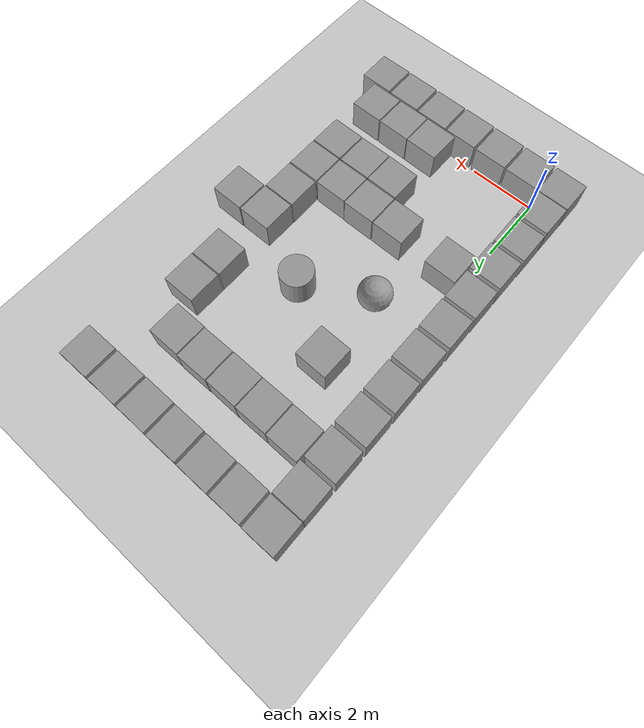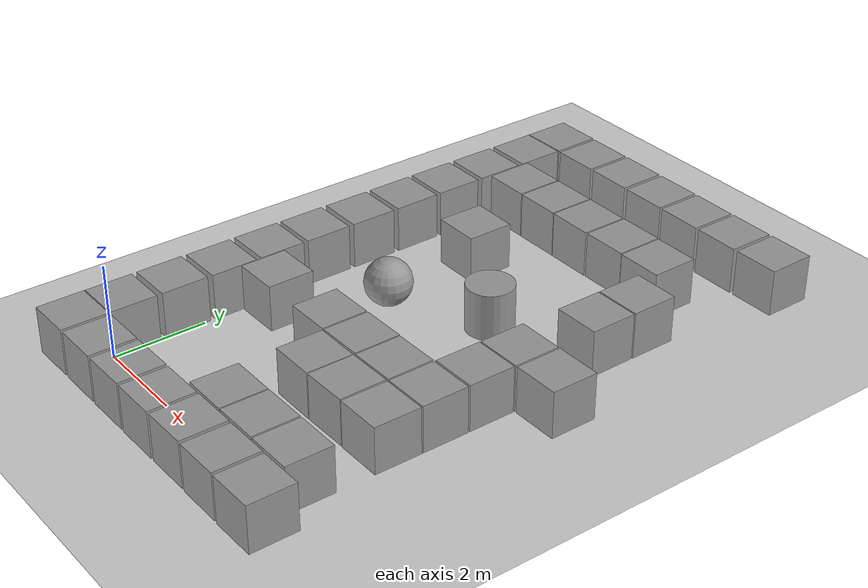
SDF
<sdf version="1.6">
 <world name="narrow_test_v4">
  <include><uri>model://ground_plane</uri></include>
  <include><uri>model://sun</uri></include>
  <model name="unit_box_0">
   <pose>-0.4980 -0.5042 0.5 0 0 0.00272</pose>
   <link name="link">
    <inertial>
     <mass>1</mass>
     <inertia>
      <ixx>0.166667</ixx>
      <ixy>0</ixy>
      <ixz>0</ixz>
      <iyy>0.166667</iyy>
      <iyz>0</iyz>
      <izz>0.166667</izz>
     </inertia>
    </inertial>
    <collision name="collision"><geometry><box><size>1 1 1</size></box></geometry></collision>
    <visual name="visual">
     <geometry><box><size>1 1 1</size></box></geometry>
     <material>
      <script><uri>file://media/materials/scripts/gazebo.material</uri><name>Gazebo/Grey</name></script>
     </material>
    </visual>
   </link>
  </model>
  <model name="unit_box_1">
   <pose>0.5734 -0.5018 0.5 0 0 0.00044</pose>
   <link name="link">
    <inertial>
     <mass>1</mass>
     <inertia>
      <ixx>0.166667</ixx>
      <ixy>0</ixy>
      <ixz>0</ixz>
      <iyy>0.166667</iyy>
      <iyz>0</iyz>
      <izz>0.166667</izz>
     </inertia>
    </inertial>
    <collision name="collision"><geometry><box><size>1 1 1</size></box></geometry></collision>
    <visual name="visual">
     <geometry><box><size>1 1 1</size></box></geometry>
     <material>
      <script><uri>file://media/materials/scripts/gazebo.material</uri><name>Gazebo/Grey</name></script>
     </material>
    </visual>
   </link>
  </model>
  <model name="unit_box_2">
   <pose>1.6460 -0.5023 0.5 0 0 0.00790</pose>
   <link name="link">
    <inertial>
     <mass>1</mass>
     <inertia>
      <ixx>0.166667</ixx>
      <ixy>0</ixy>
      <ixz>0</ixz>
      <iyy>0.166667</iyy>
      <iyz>0</iyz>
      <izz>0.166667</izz>
     </inertia>
    </inertial>
    <collision name="collision"><geometry><box><size>1 1 1</size></box></geometry></collision>
    <visual name="visual">
     <geometry><box><size>1 1 1</size></box></geometry>
     <material>
      <script><uri>file://media/materials/scripts/gazebo.material</uri><name>Gazebo/Grey</name></script>
     </material>
    </visual>
   </link>
  </model>
  <model name="unit_box_3">
   <pose>2.7196 -0.5023 0.5 0 0 0.00452</pose>
   <link name="link">
    <inertial>
     <mass>1</mass>
     <inertia>
      <ixx>0.166667</ixx>
      <ixy>0</ixy>
      <ixz>0</ixz>
      <iyy>0.166667</iyy>
      <iyz>0</iyz>
      <izz>0.166667</izz>
     </inertia>
    </inertial>
    <collision name="collision"><geometry><box><size>1 1 1</size></box></geometry></collision>
    <visual name="visual">
     <geometry><box><size>1 1 1</size></box></geometry>
     <material>
      <script><uri>file://media/materials/scripts/gazebo.material</uri><name>Gazebo/Grey</name></script>
     </material>
    </visual>
   </link>
  </model>
  <model name="unit_box_4">
   <pose>3.7847 -0.4944 0.5 0 0 0.00230</pose>
   <link name="link">
    <inertial>
     <mass>1</mass>
     <inertia>
      <ixx>0.166667</ixx>
      <ixy>0</ixy>
      <ixz>0</ixz>
      <iyy>0.166667</iyy>
      <iyz>0</iyz>
      <izz>0.166667</izz>
     </inertia>
    </inertial>
    <collision name="collision"><geometry><box><size>1 1 1</size></box></geometry></collision>
    <visual name="visual">
     <geometry><box><size>1 1 1</size></box></geometry>
     <material>
      <script><uri>file://media/materials/scripts/gazebo.material</uri><name>Gazebo/Grey</name></script>
     </material>
    </visual>
   </link>
  </model>
  <model name="unit_box_5">
   <pose>4.8581 -0.4999 0.5 0 0 0.00623</pose>
   <link name="link">
    <inertial>
     <mass>1</mass>
     <inertia>
      <ixx>0.166667</ixx>
      <ixy>0</ixy>
      <ixz>0</ixz>
      <iyy>0.166667</iyy>
      <iyz>0</iyz>
      <izz>0.166667</izz>
     </inertia>
    </inertial>
    <collision name="collision"><geometry><box><size>1 1 1</size></box></geometry></collision>
    <visual name="visual">
     <geometry><box><size>1 1 1</size></box></geometry>
     <material>
      <script><uri>file://media/materials/scripts/gazebo.material</uri><name>Gazebo/Grey</name></script>
     </material>
    </visual>
   </link>
  </model>
  <model name="unit_box_6">
   <pose>5.9253 -0.5030 0.5 0 0 0.01002</pose>
   <link name="link">
    <inertial>
     <mass>1</mass>
     <inertia>
      <ixx>0.166667</ixx>
      <ixy>0</ixy>
      <ixz>0</ixz>
      <iyy>0.166667</iyy>
      <iyz>0</iyz>
      <izz>0.166667</izz>
     </inertia>
    </inertial>
    <collision name="collision"><geometry><box><size>1 1 1</size></box></geometry></collision>
    <visual name="visual">
     <geometry><box><size>1 1 1</size></box></geometry>
     <material>
      <script><uri>file://media/materials/scripts/gazebo.material</uri><name>Gazebo/Grey</name></script>
     </material>
    </visual>
   </link>
  </model>
  <model name="unit_box_15">
   <pose>-0.4976 11.5058 0.5 0 0 0.01037</pose>
   <link name="link">
    <inertial>
     <mass>1</mass>
     <inertia>
      <ixx>0.166667</ixx>
      <ixy>0</ixy>
      <ixz>0</ixz>
      <iyy>0.166667</iyy>
      <iyz>0</iyz>
      <izz>0.166667</izz>
     </inertia>
    </inertial>
    <collision name="collision"><geometry><box><size>1 1 1</size></box></geometry></collision>
    <visual name="visual">
     <geometry><box><size>1 1 1</size></box></geometry>
     <material>
      <script><uri>file://media/materials/scripts/gazebo.material</uri><name>Gazebo/Grey</name></script>
     </material>
    </visual>
   </link>
  </model>
  <model name="unit_box_16">
   <pose>0.5728 11.4978 0.5 0 0 0.00180</pose>
   <link name="link">
    <inertial>
     <mass>1</mass>
     <inertia>
      <ixx>0.166667</ixx>
      <ixy>0</ixy>
      <ixz>0</ixz>
      <iyy>0.166667</iyy>
      <iyz>0</iyz>
      <izz>0.166667</izz>
     </inertia>
    </inertial>
    <collision name="collision"><geometry><box><size>1 1 1</size></box></geometry></collision>
    <visual name="visual">
     <geometry><box><size>1 1 1</size></box></geometry>
     <material>
      <script><uri>file://media/materials/scripts/gazebo.material</uri><name>Gazebo/Grey</name></script>
     </material>
    </visual>
   </link>
  </model>
  <model name="unit_box_17">
   <pose>1.6393 11.5044 0.5 0 0 -0.00003</pose>
   <link name="link">
    <inertial>
     <mass>1</mass>
     <inertia>
      <ixx>0.166667</ixx>
      <ixy>0</ixy>
      <ixz>0</ixz>
      <iyy>0.166667</iyy>
      <iyz>0</iyz>
      <izz>0.166667</izz>
     </inertia>
    </inertial>
    <collision name="collision"><geometry><box><size>1 1 1</size></box></geometry></collision>
    <visual name="visual">
     <geometry><box><size>1 1 1</size></box></geometry>
     <material>
      <script><uri>file://media/materials/scripts/gazebo.material</uri><name>Gazebo/Grey</name></script>
     </material>
    </visual>
   </link>
  </model>
  <model name="unit_box_18">
   <pose>2.7196 11.5036 0.5 0 0 0.00669</pose>
   <link name="link">
    <inertial>
     <mass>1</mass>
     <inertia>
      <ixx>0.166667</ixx>
      <ixy>0</ixy>
      <ixz>0</ixz>
      <iyy>0.166667</iyy>
      <iyz>0</iyz>
      <izz>0.166667</izz>
     </inertia>
    </inertial>
    <collision name="collision"><geometry><box><size>1 1 1</size></box></geometry></collision>
    <visual name="visual">
     <geometry><box><size>1 1 1</size></box></geometry>
     <material>
      <script><uri>file://media/materials/scripts/gazebo.material</uri><name>Gazebo/Grey</name></script>
     </material>
    </visual>
   </link>
  </model>
  <model name="unit_box_19">
   <pose>3.7861 11.5000 0.5 0 0 -0.00668</pose>
   <link name="link">
    <inertial>
     <mass>1</mass>
     <inertia>
      <ixx>0.166667</ixx>
      <ixy>0</ixy>
      <ixz>0</ixz>
      <iyy>0.166667</iyy>
      <iyz>0</iyz>
      <izz>0.166667</izz>
     </inertia>
    </inertial>
    <collision name="collision"><geometry><box><size>1 1 1</size></box></geometry></collision>
    <visual name="visual">
     <geometry><box><size>1 1 1</size></box></geometry>
     <material>
      <script><uri>file://media/materials/scripts/gazebo.material</uri><name>Gazebo/Grey</name></script>
     </material>
    </visual>
   </link>
  </model>
  <model name="unit_box_20">
   <pose>4.8523 11.4990 0.5 0 0 -0.00544</pose>
   <link name="link">
    <inertial>
     <mass>1</mass>
     <inertia>
      <ixx>0.166667</ixx>
      <ixy>0</ixy>
      <ixz>0</ixz>
      <iyy>0.166667</iyy>
      <iyz>0</iyz>
      <izz>0.166667</izz>
     </inertia>
    </inertial>
    <collision name="collision"><geometry><box><size>1 1 1</size></box></geometry></collision>
    <visual name="visual">
     <geometry><box><size>1 1 1</size></box></geometry>
     <material>
      <script><uri>file://media/materials/scripts/gazebo.material</uri><name>Gazebo/Grey</name></script>
     </material>
    </visual>
   </link>
  </model>
  <model name="unit_box_21">
   <pose>5.9314 11.5053 0.5 0 0 0.00692</pose>
   <link name="link">
    <inertial>
     <mass>1</mass>
     <inertia>
      <ixx>0.166667</ixx>
      <ixy>0</ixy>
      <ixz>0</ixz>
      <iyy>0.166667</iyy>
      <iyz>0</iyz>
      <izz>0.166667</izz>
     </inertia>
    </inertial>
    <collision name="collision"><geometry><box><size>1 1 1</size></box></geometry></collision>
    <visual name="visual">
     <geometry><box><size>1 1 1</size></box></geometry>
     <material>
      <script><uri>file://media/materials/scripts/gazebo.material</uri><name>Gazebo/Grey</name></script>
     </material>
    </visual>
   </link>
  </model>
  <model name="unit_box_30">
   <pose>-0.4958 0.5165 0.5 0 0 -0.00220</pose>
   <link name="link">
    <inertial>
     <mass>1</mass>
     <inertia>
      <ixx>0.166667</ixx>
      <ixy>0</ixy>
      <ixz>0</ixz>
      <iyy>0.166667</iyy>
      <iyz>0</iyz>
      <izz>0.166667</izz>
     </inertia>
    </inertial>
    <collision name="collision"><geometry><box><size>1 1 1</size></box></geometry></collision>
    <visual name="visual">
     <geometry><box><size>1 1 1</size></box></geometry>
     <material>
      <script><uri>file://media/materials/scripts/gazebo.material</uri><name>Gazebo/Grey</name></script>
     </material>
    </visual>
   </link>
  </model>
  <model name="unit_box_31">
   <pose>-0.5020 1.6276 0.5 0 0 0.00746</pose>
   <link name="link">
    <inertial>
     <mass>1</mass>
     <inertia>
      <ixx>0.166667</ixx>
      <ixy>0</ixy>
      <ixz>0</ixz>
      <iyy>0.166667</iyy>
      <iyz>0</iyz>
      <izz>0.166667</izz>
     </inertia>
    </inertial>
    <collision name="collision"><geometry><box><size>1 1 1</size></box></geometry></collision>
    <visual name="visual">
     <geometry><box><size>1 1 1</size></box></geometry>
     <material>
      <script><uri>file://media/materials/scripts/gazebo.material</uri><name>Gazebo/Grey</name></script>
     </material>
    </visual>
   </link>
  </model>
  <model name="unit_box_32">
   <pose>-0.4957 2.7324 0.5 0 0 0.00644</pose>
   <link name="link">
    <inertial>
     <mass>1</mass>
     <inertia>
      <ixx>0.166667</ixx>
      <ixy>0</ixy>
      <ixz>0</ixz>
      <iyy>0.166667</iyy>
      <iyz>0</iyz>
      <izz>0.166667</izz>
     </inertia>
    </inertial>
    <collision name="collision"><geometry><box><size>1 1 1</size></box></geometry></collision>
    <visual name="visual">
     <geometry><box><size>1 1 1</size></box></geometry>
     <material>
      <script><uri>file://media/materials/scripts/gazebo.material</uri><name>Gazebo/Grey</name></script>
     </material>
    </visual>
   </link>
  </model>
  <model name="unit_box_33">
   <pose>-0.5023 3.8456 0.5 0 0 0.00534</pose>
   <link name="link">
    <inertial>
     <mass>1</mass>
     <inertia>
      <ixx>0.166667</ixx>
      <ixy>0</ixy>
      <ixz>0</ixz>
      <iyy>0.166667</iyy>
      <iyz>0</iyz>
      <izz>0.166667</izz>
     </inertia>
    </inertial>
    <collision name="collision"><geometry><box><size>1 1 1</size></box></geometry></collision>
    <visual name="visual">
     <geometry><box><size>1 1 1</size></box></geometry>
     <material>
      <script><uri>file://media/materials/scripts/gazebo.material</uri><name>Gazebo/Grey</name></script>
     </material>
    </visual>
   </link>
  </model>
  <model name="unit_box_34">
   <pose>-0.5008 4.9417 0.5 0 0 0.00834</pose>
   <link name="link">
    <inertial>
     <mass>1</mass>
     <inertia>
      <ixx>0.166667</ixx>
      <ixy>0</ixy>
      <ixz>0</ixz>
      <iyy>0.166667</iyy>
      <iyz>0</iyz>
      <izz>0.166667</izz>
     </inertia>
    </inertial>
    <collision name="collision"><geometry><box><size>1 1 1</size></box></geometry></collision>
    <visual name="visual">
     <geometry><box><size>1 1 1</size></box></geometry>
     <material>
      <script><uri>file://media/materials/scripts/gazebo.material</uri><name>Gazebo/Grey</name></script>
     </material>
    </visual>
   </link>
  </model>
  <model name="unit_box_35">
   <pose>-0.4972 6.0556 0.5 0 0 -0.00209</pose>
   <link name="link">
    <inertial>
     <mass>1</mass>
     <inertia>
      <ixx>0.166667</ixx>
      <ixy>0</ixy>
      <ixz>0</ixz>
      <iyy>0.166667</iyy>
      <iyz>0</iyz>
      <izz>0.166667</izz>
     </inertia>
    </inertial>
    <collision name="collision"><geometry><box><size>1 1 1</size></box></geometry></collision>
    <visual name="visual">
     <geometry><box><size>1 1 1</size></box></geometry>
     <material>
      <script><uri>file://media/materials/scripts/gazebo.material</uri><name>Gazebo/Grey</name></script>
     </material>
    </visual>
   </link>
  </model>
  <model name="unit_box_36">
   <pose>-0.4998 7.1638 0.5 0 0 0.00886</pose>
   <link name="link">
    <inertial>
     <mass>1</mass>
     <inertia>
      <ixx>0.166667</ixx>
      <ixy>0</ixy>
      <ixz>0</ixz>
      <iyy>0.166667</iyy>
      <iyz>0</iyz>
      <izz>0.166667</izz>
     </inertia>
    </inertial>
    <collision name="collision"><geometry><box><size>1 1 1</size></box></geometry></collision>
    <visual name="visual">
     <geometry><box><size>1 1 1</size></box></geometry>
     <material>
      <script><uri>file://media/materials/scripts/gazebo.material</uri><name>Gazebo/Grey</name></script>
     </material>
    </visual>
   </link>
  </model>
  <model name="unit_box_37">
   <pose>-0.5033 8.2630 0.5 0 0 -0.00032</pose>
   <link name="link">
    <inertial>
     <mass>1</mass>
     <inertia>
      <ixx>0.166667</ixx>
      <ixy>0</ixy>
      <ixz>0</ixz>
      <iyy>0.166667</iyy>
      <iyz>0</iyz>
      <izz>0.166667</izz>
     </inertia>
    </inertial>
    <collision name="collision"><geometry><box><size>1 1 1</size></box></geometry></collision>
    <visual name="visual">
     <geometry><box><size>1 1 1</size></box></geometry>
     <material>
      <script><uri>file://media/materials/scripts/gazebo.material</uri><name>Gazebo/Grey</name></script>
     </material>
    </visual>
   </link>
  </model>
  <model name="unit_box_38">
   <pose>-0.5036 9.3744 0.5 0 0 -0.00048</pose>
   <link name="link">
    <inertial>
     <mass>1</mass>
     <inertia>
      <ixx>0.166667</ixx>
      <ixy>0</ixy>
      <ixz>0</ixz>
      <iyy>0.166667</iyy>
      <iyz>0</iyz>
      <izz>0.166667</izz>
     </inertia>
    </inertial>
    <collision name="collision"><geometry><box><size>1 1 1</size></box></geometry></collision>
    <visual name="visual">
     <geometry><box><size>1 1 1</size></box></geometry>
     <material>
      <script><uri>file://media/materials/scripts/gazebo.material</uri><name>Gazebo/Grey</name></script>
     </material>
    </visual>
   </link>
  </model>
  <model name="unit_box_39">
   <pose>-0.4949 10.4850 0.5 0 0 0.00295</pose>
   <link name="link">
    <inertial>
     <mass>1</mass>
     <inertia>
      <ixx>0.166667</ixx>
      <ixy>0</ixy>
      <ixz>0</ixz>
      <iyy>0.166667</iyy>
      <iyz>0</iyz>
      <izz>0.166667</izz>
     </inertia>
    </inertial>
    <collision name="collision"><geometry><box><size>1 1 1</size></box></geometry></collision>
    <visual name="visual">
     <geometry><box><size>1 1 1</size></box></geometry>
     <material>
      <script><uri>file://media/materials/scripts/gazebo.material</uri><name>Gazebo/Grey</name></script>
     </material>
    </visual>
   </link>
  </model>
  <model name="unit_box_50">
   <pose>0.5265 3.3753 0.5 0 0 0.00566</pose>
   <link name="link">
    <inertial>
     <mass>1</mass>
     <inertia>
      <ixx>0.166667</ixx>
      <ixy>0</ixy>
      <ixz>0</ixz>
      <iyy>0.166667</iyy>
      <iyz>0</iyz>
      <izz>0.166667</izz>
     </inertia>
    </inertial>
    <collision name="collision"><geometry><box><size>1 1 1</size></box></geometry></collision>
    <visual name="visual">
     <geometry><box><size>1 1 1</size></box></geometry>
     <material>
      <script><uri>file://media/materials/scripts/gazebo.material</uri><name>Gazebo/Grey</name></script>
     </material>
    </visual>
   </link>
  </model>
  <model name="unit_box_51">
   <pose>2.3443 3.3763 0.5 0 0 0.00459</pose>
   <link name="link">
    <inertial>
     <mass>1</mass>
     <inertia>
      <ixx>0.166667</ixx>
      <ixy>0</ixy>
      <ixz>0</ixz>
      <iyy>0.166667</iyy>
      <iyz>0</iyz>
      <izz>0.166667</izz>
     </inertia>
    </inertial>
    <collision name="collision"><geometry><box><size>1 1 1</size></box></geometry></collision>
    <visual name="visual">
     <geometry><box><size>1 1 1</size></box></geometry>
     <material>
      <script><uri>file://media/materials/scripts/gazebo.material</uri><name>Gazebo/Grey</name></script>
     </material>
    </visual>
   </link>
  </model>
  <model name="unit_box_52">
   <pose>3.3788 3.3857 0.5 0 0 0.00654</pose>
   <link name="link">
    <inertial>
     <mass>1</mass>
     <inertia>
      <ixx>0.166667</ixx>
      <ixy>0</ixy>
      <ixz>0</ixz>
      <iyy>0.166667</iyy>
      <iyz>0</iyz>
      <izz>0.166667</izz>
     </inertia>
    </inertial>
    <collision name="collision"><geometry><box><size>1 1 1</size></box></geometry></collision>
    <visual name="visual">
     <geometry><box><size>1 1 1</size></box></geometry>
     <material>
      <script><uri>file://media/materials/scripts/gazebo.material</uri><name>Gazebo/Grey</name></script>
     </material>
    </visual>
   </link>
  </model>
  <model name="unit_box_53">
   <pose>3.3846 2.3457 0.5 0 0 -0.00878</pose>
   <link name="link">
    <inertial>
     <mass>1</mass>
     <inertia>
      <ixx>0.166667</ixx>
      <ixy>0</ixy>
      <ixz>0</ixz>
      <iyy>0.166667</iyy>
      <iyz>0</iyz>
      <izz>0.166667</izz>
     </inertia>
    </inertial>
    <collision name="collision"><geometry><box><size>1 1 1</size></box></geometry></collision>
    <visual name="visual">
     <geometry><box><size>1 1 1</size></box></geometry>
     <material>
      <script><uri>file://media/materials/scripts/gazebo.material</uri><name>Gazebo/Grey</name></script>
     </material>
    </visual>
   </link>
  </model>
  <model name="unit_box_54">
   <pose>3.3819 0.5456 0.5 0 0 -0.00548</pose>
   <link name="link">
    <inertial>
     <mass>1</mass>
     <inertia>
      <ixx>0.166667</ixx>
      <ixy>0</ixy>
      <ixz>0</ixz>
      <iyy>0.166667</iyy>
      <iyz>0</iyz>
      <izz>0.166667</izz>
     </inertia>
    </inertial>
    <collision name="collision"><geometry><box><size>1 1 1</size></box></geometry></collision>
    <visual name="visual">
     <geometry><box><size>1 1 1</size></box></geometry>
     <material>
      <script><uri>file://media/materials/scripts/gazebo.material</uri><name>Gazebo/Grey</name></script>
     </material>
    </visual>
   </link>
  </model>
  <model name="unit_box_55">
   <pose>4.4071 0.5446 0.5 0 0 -0.00012</pose>
   <link name="link">
    <inertial>
     <mass>1</mass>
     <inertia>
      <ixx>0.166667</ixx>
      <ixy>0</ixy>
      <ixz>0</ixz>
      <iyy>0.166667</iyy>
      <iyz>0</iyz>
      <izz>0.166667</izz>
     </inertia>
    </inertial>
    <collision name="collision"><geometry><box><size>1 1 1</size></box></geometry></collision>
    <visual name="visual">
     <geometry><box><size>1 1 1</size></box></geometry>
     <material>
      <script><uri>file://media/materials/scripts/gazebo.material</uri><name>Gazebo/Grey</name></script>
     </material>
    </visual>
   </link>
  </model>
  <model name="unit_box_56">
   <pose>5.4445 0.5442 0.5 0 0 -0.00010</pose>
   <link name="link">
    <inertial>
     <mass>1</mass>
     <inertia>
      <ixx>0.166667</ixx>
      <ixy>0</ixy>
      <ixz>0</ixz>
      <iyy>0.166667</iyy>
      <iyz>0</iyz>
      <izz>0.166667</izz>
     </inertia>
    </inertial>
    <collision name="collision"><geometry><box><size>1 1 1</size></box></geometry></collision>
    <visual name="visual">
     <geometry><box><size>1 1 1</size></box></geometry>
     <material>
      <script><uri>file://media/materials/scripts/gazebo.material</uri><name>Gazebo/Grey</name></script>
     </material>
    </visual>
   </link>
  </model>
  <model name="unit_box_57">
   <pose>4.4045 2.3479 0.5 0 0 0.01028</pose>
   <link name="link">
    <inertial>
     <mass>1</mass>
     <inertia>
      <ixx>0.166667</ixx>
      <ixy>0</ixy>
      <ixz>0</ixz>
      <iyy>0.166667</iyy>
      <iyz>0</iyz>
      <izz>0.166667</izz>
     </inertia>
    </inertial>
    <collision name="collision"><geometry><box><size>1 1 1</size></box></geometry></collision>
    <visual name="visual">
     <geometry><box><size>1 1 1</size></box></geometry>
     <material>
      <script><uri>file://media/materials/scripts/gazebo.material</uri><name>Gazebo/Grey</name></script>
     </material>
    </visual>
   </link>
  </model>
  <model name="unit_box_58">
   <pose>4.4055 3.3805 0.5 0 0 0.00994</pose>
   <link name="link">
    <inertial>
     <mass>1</mass>
     <inertia>
      <ixx>0.166667</ixx>
      <ixy>0</ixy>
      <ixz>0</ixz>
      <iyy>0.166667</iyy>
      <iyz>0</iyz>
      <izz>0.166667</izz>
     </inertia>
    </inertial>
    <collision name="collision"><geometry><box><size>1 1 1</size></box></geometry></collision>
    <visual name="visual">
     <geometry><box><size>1 1 1</size></box></geometry>
     <material>
      <script><uri>file://media/materials/scripts/gazebo.material</uri><name>Gazebo/Grey</name></script>
     </material>
    </visual>
   </link>
  </model>
  <model name="unit_box_59">
   <pose>5.4454 2.3453 0.5 0 0 -0.00034</pose>
   <link name="link">
    <inertial>
     <mass>1</mass>
     <inertia>
      <ixx>0.166667</ixx>
      <ixy>0</ixy>
      <ixz>0</ixz>
      <iyy>0.166667</iyy>
      <iyz>0</iyz>
      <izz>0.166667</izz>
     </inertia>
    </inertial>
    <collision name="collision"><geometry><box><size>1 1 1</size></box></geometry></collision>
    <visual name="visual">
     <geometry><box><size>1 1 1</size></box></geometry>
     <material>
      <script><uri>file://media/materials/scripts/gazebo.material</uri><name>Gazebo/Grey</name></script>
     </material>
    </visual>
   </link>
  </model>
  <model name="unit_box_60">
   <pose>5.4418 3.3751 0.5 0 0 0.00373</pose>
   <link name="link">
    <inertial>
     <mass>1</mass>
     <inertia>
      <ixx>0.166667</ixx>
      <ixy>0</ixy>
      <ixz>0</ixz>
      <iyy>0.166667</iyy>
      <iyz>0</iyz>
      <izz>0.166667</izz>
     </inertia>
    </inertial>
    <collision name="collision"><geometry><box><size>1 1 1</size></box></geometry></collision>
    <visual name="visual">
     <geometry><box><size>1 1 1</size></box></geometry>
     <material>
      <script><uri>file://media/materials/scripts/gazebo.material</uri><name>Gazebo/Grey</name></script>
     </material>
    </visual>
   </link>
  </model>
  <model name="unit_box_61">
   <pose>5.4348 4.4153 0.5 0 0 0.00543</pose>
   <link name="link">
    <inertial>
     <mass>1</mass>
     <inertia>
      <ixx>0.166667</ixx>
      <ixy>0</ixy>
      <ixz>0</ixz>
      <iyy>0.166667</iyy>
      <iyz>0</iyz>
      <izz>0.166667</izz>
     </inertia>
    </inertial>
    <collision name="collision"><geometry><box><size>1 1 1</size></box></geometry></collision>
    <visual name="visual">
     <geometry><box><size>1 1 1</size></box></geometry>
     <material>
      <script><uri>file://media/materials/scripts/gazebo.material</uri><name>Gazebo/Grey</name></script>
     </material>
    </visual>
   </link>
  </model>
  <model name="unit_box_66">
   <pose>6.4753 5.4495 0.5 0 0 0.00401</pose>
   <link name="link">
    <inertial>
     <mass>1</mass>
     <inertia>
      <ixx>0.166667</ixx>
      <ixy>0</ixy>
      <ixz>0</ixz>
      <iyy>0.166667</iyy>
      <iyz>0</iyz>
      <izz>0.166667</izz>
     </inertia>
    </inertial>
    <collision name="collision"><geometry><box><size>1 1 1</size></box></geometry></collision>
    <visual name="visual">
     <geometry><box><size>1 1 1</size></box></geometry>
     <material>
      <script><uri>file://media/materials/scripts/gazebo.material</uri><name>Gazebo/Grey</name></script>
     </material>
    </visual>
   </link>
  </model>
  <model name="unit_box_68">
   <pose>5.4353 5.4423 0.5 0 0 0.00366</pose>
   <link name="link">
    <inertial>
     <mass>1</mass>
     <inertia>
      <ixx>0.166667</ixx>
      <ixy>0</ixy>
      <ixz>0</ixz>
      <iyy>0.166667</iyy>
      <iyz>0</iyz>
      <izz>0.166667</izz>
     </inertia>
    </inertial>
    <collision name="collision"><geometry><box><size>1 1 1</size></box></geometry></collision>
    <visual name="visual">
     <geometry><box><size>1 1 1</size></box></geometry>
     <material>
      <script><uri>file://media/materials/scripts/gazebo.material</uri><name>Gazebo/Grey</name></script>
     </material>
    </visual>
   </link>
  </model>
  <model name="unit_box_69">
   <pose>5.4413 7.2917 0.5 0 0 0.00998</pose>
   <link name="link">
    <inertial>
     <mass>1</mass>
     <inertia>
      <ixx>0.166667</ixx>
      <ixy>0</ixy>
      <ixz>0</ixz>
      <iyy>0.166667</iyy>
      <iyz>0</iyz>
      <izz>0.166667</izz>
     </inertia>
    </inertial>
    <collision name="collision"><geometry><box><size>1 1 1</size></box></geometry></collision>
    <visual name="visual">
     <geometry><box><size>1 1 1</size></box></geometry>
     <material>
      <script><uri>file://media/materials/scripts/gazebo.material</uri><name>Gazebo/Grey</name></script>
     </material>
    </visual>
   </link>
  </model>
  <model name="unit_box_70">
   <pose>5.4374 8.3235 0.5 0 0 0.00691</pose>
   <link name="link">
    <inertial>
     <mass>1</mass>
     <inertia>
      <ixx>0.166667</ixx>
      <ixy>0</ixy>
      <ixz>0</ixz>
      <iyy>0.166667</iyy>
      <iyz>0</iyz>
      <izz>0.166667</izz>
     </inertia>
    </inertial>
    <collision name="collision"><geometry><box><size>1 1 1</size></box></geometry></collision>
    <visual name="visual">
     <geometry><box><size>1 1 1</size></box></geometry>
     <material>
      <script><uri>file://media/materials/scripts/gazebo.material</uri><name>Gazebo/Grey</name></script>
     </material>
    </visual>
   </link>
  </model>
  <model name="unit_box_71">
   <pose>0.5348 9.6026 0.5 0 0 0.00158</pose>
   <link name="link">
    <inertial>
     <mass>1</mass>
     <inertia>
      <ixx>0.166667</ixx>
      <ixy>0</ixy>
      <ixz>0</ixz>
      <iyy>0.166667</iyy>
      <iyz>0</iyz>
      <izz>0.166667</izz>
     </inertia>
    </inertial>
    <collision name="collision"><geometry><box><size>1 1 1</size></box></geometry></collision>
    <visual name="visual">
     <geometry><box><size>1 1 1</size></box></geometry>
     <material>
      <script><uri>file://media/materials/scripts/gazebo.material</uri><name>Gazebo/Grey</name></script>
     </material>
    </visual>
   </link>
  </model>
  <model name="unit_box_72">
   <pose>1.5645 9.6005 0.5 0 0 0.00601</pose>
   <link name="link">
    <inertial>
     <mass>1</mass>
     <inertia>
      <ixx>0.166667</ixx>
      <ixy>0</ixy>
      <ixz>0</ixz>
      <iyy>0.166667</iyy>
      <iyz>0</iyz>
      <izz>0.166667</izz>
     </inertia>
    </inertial>
    <collision name="collision"><geometry><box><size>1 1 1</size></box></geometry></collision>
    <visual name="visual">
     <geometry><box><size>1 1 1</size></box></geometry>
     <material>
      <script><uri>file://media/materials/scripts/gazebo.material</uri><name>Gazebo/Grey</name></script>
     </material>
    </visual>
   </link>
  </model>
  <model name="unit_box_73">
   <pose>2.5895 9.5977 0.5 0 0 -0.00567</pose>
   <link name="link">
    <inertial>
     <mass>1</mass>
     <inertia>
      <ixx>0.166667</ixx>
      <ixy>0</ixy>
      <ixz>0</ixz>
      <iyy>0.166667</iyy>
      <iyz>0</iyz>
      <izz>0.166667</izz>
     </inertia>
    </inertial>
    <collision name="collision"><geometry><box><size>1 1 1</size></box></geometry></collision>
    <visual name="visual">
     <geometry><box><size>1 1 1</size></box></geometry>
     <material>
      <script><uri>file://media/materials/scripts/gazebo.material</uri><name>Gazebo/Grey</name></script>
     </material>
    </visual>
   </link>
  </model>
  <model name="unit_box_74">
   <pose>3.6231 9.6059 0.5 0 0 0.00688</pose>
   <link name="link">
    <inertial>
     <mass>1</mass>
     <inertia>
      <ixx>0.166667</ixx>
      <ixy>0</ixy>
      <ixz>0</ixz>
      <iyy>0.166667</iyy>
      <iyz>0</iyz>
      <izz>0.166667</izz>
     </inertia>
    </inertial>
    <collision name="collision"><geometry><box><size>1 1 1</size></box></geometry></collision>
    <visual name="visual">
     <geometry><box><size>1 1 1</size></box></geometry>
     <material>
      <script><uri>file://media/materials/scripts/gazebo.material</uri><name>Gazebo/Grey</name></script>
     </material>
    </visual>
   </link>
  </model>
  <model name="unit_box_75">
   <pose>4.6510 9.5956 0.5 0 0 0.00089</pose>
   <link name="link">
    <inertial>
     <mass>1</mass>
     <inertia>
      <ixx>0.166667</ixx>
      <ixy>0</ixy>
      <ixz>0</ixz>
      <iyy>0.166667</iyy>
      <iyz>0</iyz>
      <izz>0.166667</izz>
     </inertia>
    </inertial>
    <collision name="collision"><geometry><box><size>1 1 1</size></box></geometry></collision>
    <visual name="visual">
     <geometry><box><size>1 1 1</size></box></geometry>
     <material>
      <script><uri>file://media/materials/scripts/gazebo.material</uri><name>Gazebo/Grey</name></script>
     </material>
    </visual>
   </link>
  </model>
  <model name="unit_box_76">
   <pose>1.3949 7.5989 0.5 0 0 -0.00369</pose>
   <link name="link">
    <inertial>
     <mass>1</mass>
     <inertia>
      <ixx>0.166667</ixx>
      <ixy>0</ixy>
      <ixz>0</ixz>
      <iyy>0.166667</iyy>
      <iyz>0</iyz>
      <izz>0.166667</izz>
     </inertia>
    </inertial>
    <collision name="collision"><geometry><box><size>1 1 1</size></box></geometry></collision>
    <visual name="visual">
     <geometry><box><size>1 1 1</size></box></geometry>
     <material>
      <script><uri>file://media/materials/scripts/gazebo.material</uri><name>Gazebo/Grey</name></script>
     </material>
    </visual>
   </link>
  </model>
  <model name="unit_sphere_0">
   <pose>1.5500 5.3000 0.5 0 0 0.00000</pose>
   <link name="link">
    <inertial>
     <mass>1</mass>
     <inertia>
      <ixx>0.166667</ixx>
      <ixy>0</ixy>
      <ixz>0</ixz>
      <iyy>0.166667</iyy>
      <iyz>0</iyz>
      <izz>0.166667</izz>
     </inertia>
    </inertial>
    <collision name="collision"><geometry><sphere><radius>0.5</radius></sphere></geometry></collision>
    <visual name="visual">
     <geometry><sphere><radius>0.5</radius></sphere></geometry>
     <material>
      <script><uri>file://media/materials/scripts/gazebo.material</uri><name>Gazebo/Grey</name></script>
     </material>
    </visual>
   </link>
  </model>
  <model name="unit_cylinder_0">
   <pose>3.4500 6.3500 0.5 0 0 0.00000</pose>
   <link name="link">
    <inertial>
     <mass>1</mass>
     <inertia>
      <ixx>0.166667</ixx>
      <ixy>0</ixy>
      <ixz>0</ixz>
      <iyy>0.166667</iyy>
      <iyz>0</iyz>
      <izz>0.166667</izz>
     </inertia>
    </inertial>
    <collision name="collision">
     <geometry><cylinder><radius>0.5</radius><length>1</length></cylinder></geometry>
    </collision>
    <visual name="visual">
     <geometry><cylinder><radius>0.5</radius><length>1</length></cylinder></geometry>
     <material>
      <script><uri>file://media/materials/scripts/gazebo.material</uri><name>Gazebo/Grey</name></script>
     </material>
    </visual>
   </link>
  </model>
 </world>
</sdf>
